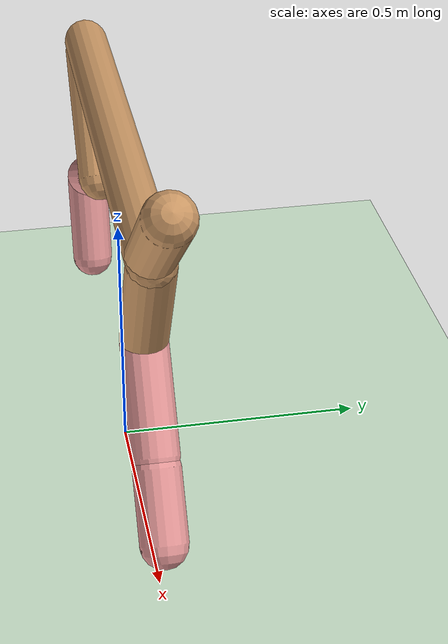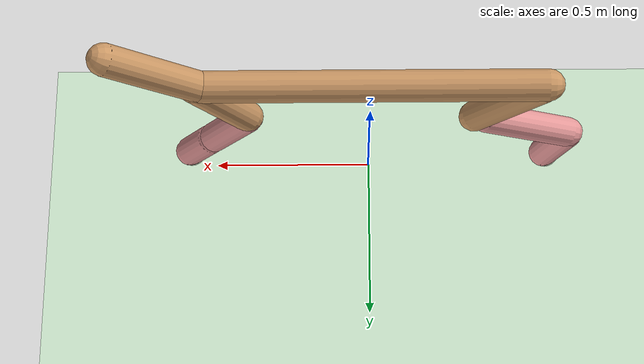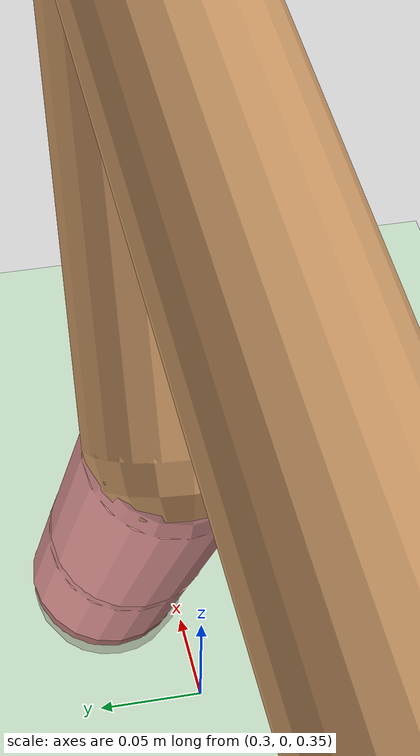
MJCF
<mujoco model="cheetah">
  <compiler angle="radian" coordinate="local" inertiafromgeom="true" settotalmass="14"/>
  <default>
    <joint armature=".1" damping=".01" limited="true" solimplimit="0 .8 .03" solreflimit=".02 1" stiffness="8"/>
    <geom conaffinity="0" condim="3" contype="1" friction=".4 .1 .1" rgba="0.8 0.6 .4 1" solimp="0.0 0.8 0.01" solref="0.02 1"/>
    <motor ctrllimited="true" ctrlrange="-1 1"/>
  </default>
  <size nstack="300000" nuser_geom="1"/>
  <option gravity="0 0 -9.81" timestep="0.01"/>
  <asset>
    <texture builtin="gradient" height="100" rgb1="1 1 1" rgb2="0 0 0" type="skybox" width="100"/>
    <texture builtin="flat" height="1278" mark="cross" markrgb="1 1 1" name="texgeom" random="0.01" rgb1="0.8 0.6 0.4" rgb2="0.8 0.6 0.4" type="cube" width="127"/>
    <texture builtin="checker" height="100" name="texplane" rgb1="0 0 0" rgb2="0.8 0.8 0.8" type="2d" width="100"/>
    <material name="MatPlane" reflectance="0.5" shininess="1" specular="1" texrepeat="60 60" texture="texplane"/>
    <material name="geom" texture="texgeom" texuniform="true"/>
  </asset>
  <worldbody>
    <light cutoff="100" diffuse="1 1 1" dir="-0 0 -1.3" directional="true" exponent="1" pos="0 0 1.3" specular=".1 .1 .1"/>
    <geom conaffinity="1" condim="3" material="MatPlane" name="floor" pos="0 0 0" rgba="0.8 0.9 0.8 1" size="40 40 40" type="plane"/>
    <body name="torso" pos="0 0 .7">
      <camera name="track" mode="trackcom" pos="0 -3 0.3" xyaxes="1 0 0 0 0 1"/>
      <joint armature="0" axis="1 0 0" damping="0" limited="false" name="rootx" pos="0 0 0" stiffness="0" type="slide"/>
      <joint armature="0" axis="0 0 1" damping="0" limited="false" name="rootz" pos="0 0 0" stiffness="0" type="slide"/>
      <joint armature="0" axis="0 1 0" damping="0" limited="false" name="rooty" pos="0 0 0" stiffness="0" type="hinge"/>
      <geom fromto="-.5 0 0 .5 0 0" name="torso" size="0.046" type="capsule"/>
      <geom axisangle="0 1 0 .87" name="head" pos=".6 0 .1" size="0.046 .15" type="capsule"/>
      <body name="bthigh" pos="-.5 0 0">
        <joint axis="0 1 0" damping="6" name="bthigh" pos="0 0 0" range="-.52 1.05" stiffness="240" type="hinge"/>
        <site name="joint0" pos="0 0 0" size=".003 .003 .003" type="ellipsoid" rgba="0.3 0.2 0.1 0.3"/>
        <geom axisangle="0 1 0 -3.8" name="bthigh" pos=".1 0 -.13" size="0.046 .145" type="capsule"/>
        <body name="bshin" pos=".16 0 -.25">
          <joint axis="0 1 0" damping="4.5" name="bshin" pos="0 0 0" range="-.785 .785" stiffness="180" type="hinge"/>
          <site name="joint1" pos="0 0 0" size=".003 .003 .003" type="ellipsoid" rgba="0.3 0.2 0.1 0.3"/>
          <geom axisangle="0 1 0 -2.03" name="bshin" pos="-.14 0 -.07" rgba="0.9 0.6 0.6 1" size="0.046 .15" type="capsule"/>
          <body name="bfoot" pos="-.28 0 -.14">
            <joint axis="0 1 0" damping="3" name="bfoot" pos="0 0 0" range="-.4 .785" stiffness="120" type="hinge"/>
            <site name="joint2" pos="0 0 0" size=".003 .003 .003" type="ellipsoid" rgba="0.3 0.2 0.1 0.3"/>
            <geom axisangle="0 1 0 -.27" name="bfoot" pos=".03 0 -.097" rgba="0.9 0.6 0.6 1" size="0.046 .094" type="capsule"/>
            <site name="touch0" pos=".05 0 -0.19" size=".046 .046 .046" type="ellipsoid" rgba="0.3 0.2 0.1 0.3"/>
          </body>
        </body>
      </body>
      <body name="fthigh" pos=".5 0 0">
        <joint axis="0 1 0" damping="4.5" name="fthigh" pos="0 0 0" range="-1 .7" stiffness="180" type="hinge"/>
        <site name="joint3" pos="0 0 0" size=".003 .003 .003" type="ellipsoid" rgba="0.3 0.2 0.1 0.3"/>
        <geom axisangle="0 1 0 .52" name="fthigh" pos="-.07 0 -.12" size="0.046 .133" type="capsule"/>
        <body name="fshin" pos="-.14 0 -.24">
          <joint axis="0 1 0" damping="3" name="fshin" pos="0 0 0" range="-1.2 .87" stiffness="120" type="hinge"/>
          <site name="joint4" pos="0 0 0" size=".003 .003 .003" type="ellipsoid" rgba="0.3 0.2 0.1 0.3"/>
          <geom axisangle="0 1 0 -.6" name="fshin" pos=".065 0 -.09" rgba="0.9 0.6 0.6 1" size="0.046 .106" type="capsule"/>
          <body name="ffoot" pos=".13 0 -.18">
            <joint axis="0 1 0" damping="1.5" name="ffoot" pos="0 0 0" range="-.5 .5" stiffness="60" type="hinge"/>
            <site name="joint5" pos="0 0 0" size=".003 .003 .003" type="ellipsoid" rgba="0.3 0.2 0.1 0.3"/>
            <geom axisangle="0 1 0 -.6" name="ffoot" pos=".045 0 -.07" rgba="0.9 0.6 0.6 1" size="0.046 .07" type="capsule"/>
            <site name="touch1" pos=".08 0 -0.13" size=".046 .046 .046" type="ellipsoid" rgba="0.3 0.2 0.1 0.3"/>
          </body>
        </body>
      </body>
    </body>
  </worldbody>
  <actuator>
    <motor gear="120" joint="bthigh" name="bthigh"/>
    <motor gear="90" joint="bshin" name="bshin"/>
    <motor gear="60" joint="bfoot" name="bfoot"/>
    <motor gear="120" joint="fthigh" name="fthigh"/>
    <motor gear="60" joint="fshin" name="fshin"/>
    <motor gear="30" joint="ffoot" name="ffoot"/>
  </actuator>
  <sensor>
    <torque site="joint0" name="torque_sensor0"/>
    <torque site="joint1" name="torque_sensor1"/>
    <torque site="joint2" name="torque_sensor2"/>
    <torque site="joint3" name="torque_sensor3"/>
    <torque site="joint4" name="torque_sensor4"/>
    <torque site="joint5" name="torque_sensor5"/>
    <touch name="touch_sensor0" site="touch0"/> -->
    <touch name="touch_sensor1" site="touch1"/> -->
  </sensor>
</mujoco>
